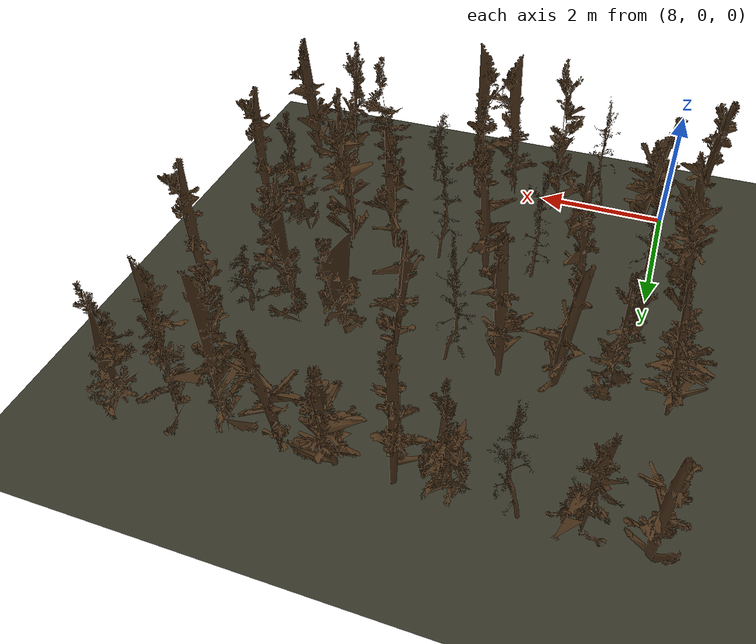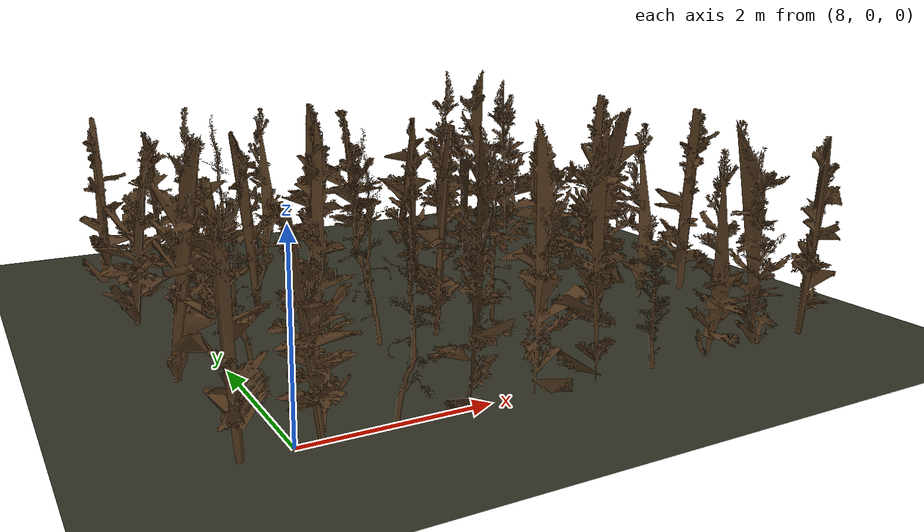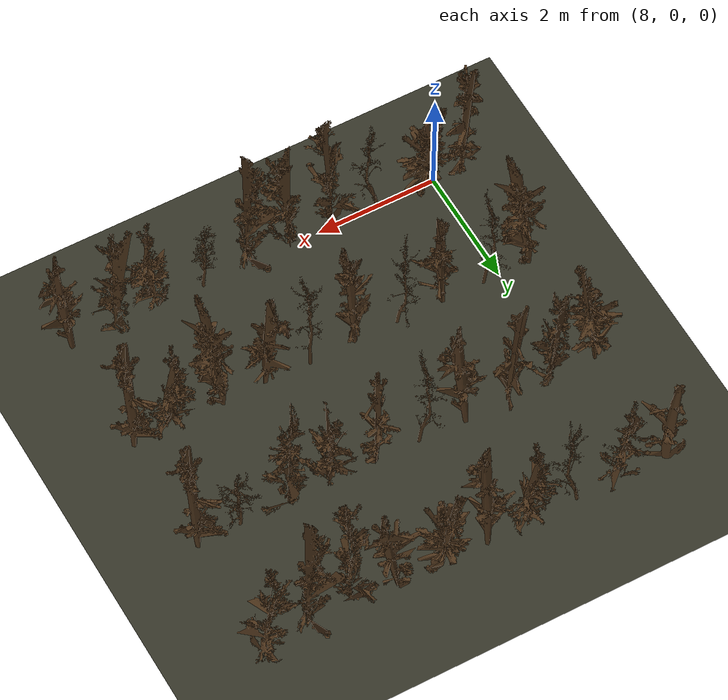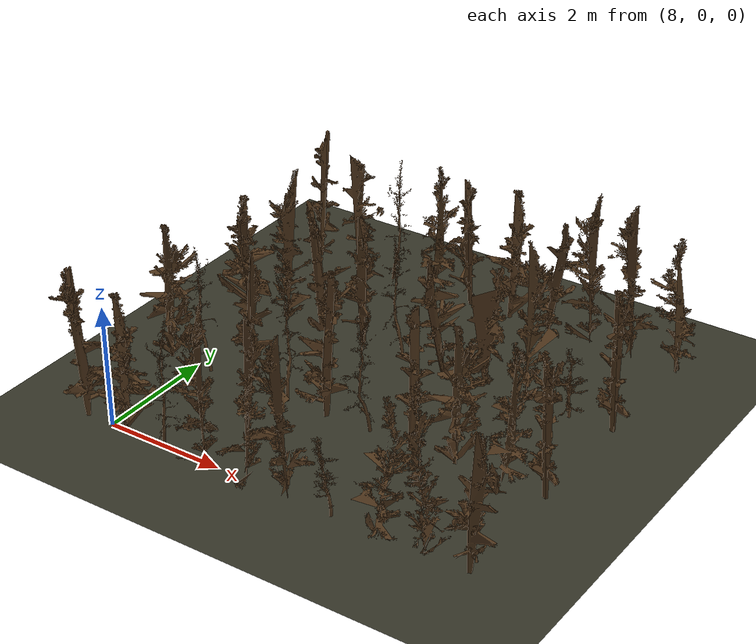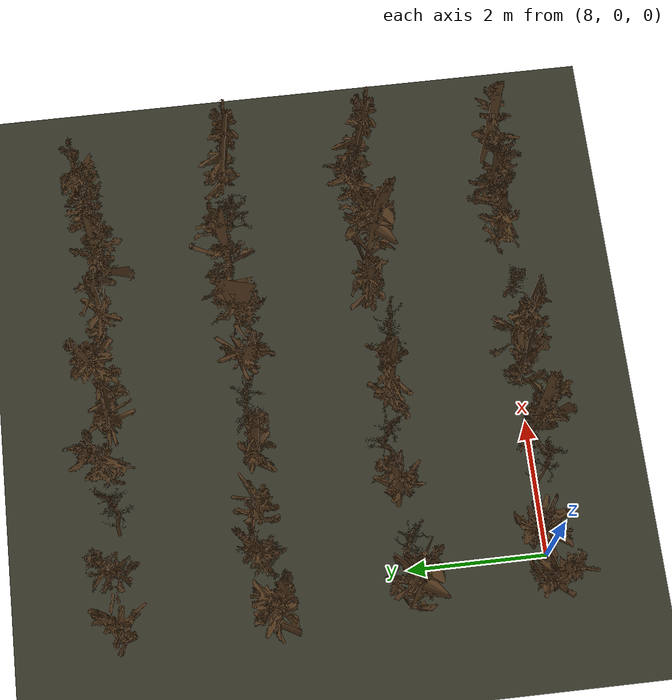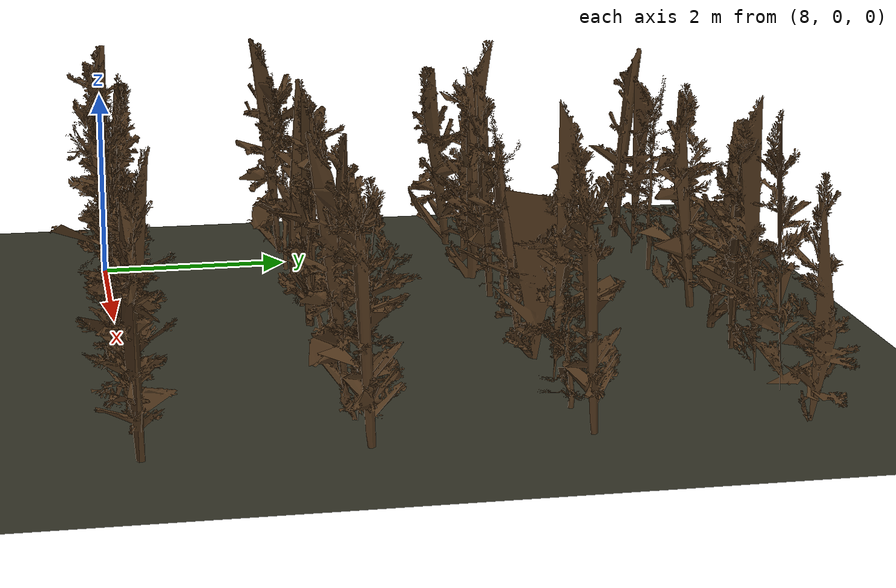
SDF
<sdf version="1.9">
 <world name="orchard_dormant_world">
  <model name="ground_plane">
   <static>true</static>
   <link name="link">
    <collision name="collision">
     <geometry><plane><normal>0 0 1</normal><size>500 500</size></plane></geometry>
    </collision>
    <visual name="visual">
     <geometry><plane><normal>0 0 1</normal><size>500 500</size></plane></geometry>
     <material><ambient>0.2 0.2 0.15 1</ambient><diffuse>0.2 0.2 0.15 1</diffuse></material>
    </visual>
   </link>
  </model>
  <model name="tree_r1_t11">
   <static>true</static>
   <pose>7.500 0.000 -0.100 0 0 5.416</pose>
   <link name="link">
    <collision name="collision">
     <geometry>
      <mesh>
       <uri>file:///home/administrator/ros2/orchard_navigation_rl_ws/src/orchard_worlds/models/orchard_model/tree6_collision.stl</uri>
      </mesh>
     </geometry>
    </collision>
    <visual name="visual">
     <geometry>
      <mesh>
       <uri>file:///home/administrator/ros2/orchard_navigation_rl_ws/src/orchard_worlds/models/orchard_model/tree6.stl</uri>
      </mesh>
     </geometry>
     <material><ambient>0.3 0.2 0.1 1</ambient><diffuse>0.3 0.2 0.1 1</diffuse></material>
    </visual>
   </link>
  </model>
  <model name="tree_r1_t12">
   <static>true</static>
   <pose>8.250 0.000 -0.100 0 0 4.954</pose>
   <link name="link">
    <collision name="collision">
     <geometry>
      <mesh>
       <uri>file:///home/administrator/ros2/orchard_navigation_rl_ws/src/orchard_worlds/models/orchard_model/tree12_collision.stl</uri>
      </mesh>
     </geometry>
    </collision>
    <visual name="visual">
     <geometry>
      <mesh>
       <uri>file:///home/administrator/ros2/orchard_navigation_rl_ws/src/orchard_worlds/models/orchard_model/tree12.stl</uri>
      </mesh>
     </geometry>
     <material><ambient>0.3 0.2 0.1 1</ambient><diffuse>0.3 0.2 0.1 1</diffuse></material>
    </visual>
   </link>
  </model>
  <model name="tree_r1_t13">
   <static>true</static>
   <pose>9.000 0.000 -0.100 0 0 3.302</pose>
   <link name="link">
    <collision name="collision">
     <geometry>
      <mesh>
       <uri>file:///home/administrator/ros2/orchard_navigation_rl_ws/src/orchard_worlds/models/orchard_model/tree16_collision.stl</uri>
      </mesh>
     </geometry>
    </collision>
    <visual name="visual">
     <geometry>
      <mesh>
       <uri>file:///home/administrator/ros2/orchard_navigation_rl_ws/src/orchard_worlds/models/orchard_model/tree16.stl</uri>
      </mesh>
     </geometry>
     <material><ambient>0.3 0.2 0.1 1</ambient><diffuse>0.3 0.2 0.1 1</diffuse></material>
    </visual>
   </link>
  </model>
  <model name="tree_r1_t14">
   <static>true</static>
   <pose>9.750 0.000 -0.100 0 0 0.837</pose>
   <link name="link">
    <collision name="collision">
     <geometry>
      <mesh>
       <uri>file:///home/administrator/ros2/orchard_navigation_rl_ws/src/orchard_worlds/models/orchard_model/tree3_collision.stl</uri>
      </mesh>
     </geometry>
    </collision>
    <visual name="visual">
     <geometry>
      <mesh>
       <uri>file:///home/administrator/ros2/orchard_navigation_rl_ws/src/orchard_worlds/models/orchard_model/tree3.stl</uri>
      </mesh>
     </geometry>
     <material><ambient>0.3 0.2 0.1 1</ambient><diffuse>0.3 0.2 0.1 1</diffuse></material>
    </visual>
   </link>
  </model>
  <model name="tree_r1_t15">
   <static>true</static>
   <pose>10.500 0.000 -0.100 0 0 2.239</pose>
   <link name="link">
    <collision name="collision">
     <geometry>
      <mesh>
       <uri>file:///home/administrator/ros2/orchard_navigation_rl_ws/src/orchard_worlds/models/orchard_model/tree3_collision.stl</uri>
      </mesh>
     </geometry>
    </collision>
    <visual name="visual">
     <geometry>
      <mesh>
       <uri>file:///home/administrator/ros2/orchard_navigation_rl_ws/src/orchard_worlds/models/orchard_model/tree3.stl</uri>
      </mesh>
     </geometry>
     <material><ambient>0.3 0.2 0.1 1</ambient><diffuse>0.3 0.2 0.1 1</diffuse></material>
    </visual>
   </link>
  </model>
  <model name="tree_r1_t16">
   <static>true</static>
   <pose>11.250 0.000 -0.100 0 0 5.531</pose>
   <link name="link">
    <collision name="collision">
     <geometry>
      <mesh>
       <uri>file:///home/administrator/ros2/orchard_navigation_rl_ws/src/orchard_worlds/models/orchard_model/tree3_collision.stl</uri>
      </mesh>
     </geometry>
    </collision>
    <visual name="visual">
     <geometry>
      <mesh>
       <uri>file:///home/administrator/ros2/orchard_navigation_rl_ws/src/orchard_worlds/models/orchard_model/tree3.stl</uri>
      </mesh>
     </geometry>
     <material><ambient>0.3 0.2 0.1 1</ambient><diffuse>0.3 0.2 0.1 1</diffuse></material>
    </visual>
   </link>
  </model>
  <model name="tree_r1_t17">
   <static>true</static>
   <pose>12.000 0.000 -0.100 0 0 0.229</pose>
   <link name="link">
    <collision name="collision">
     <geometry>
      <mesh>
       <uri>file:///home/administrator/ros2/orchard_navigation_rl_ws/src/orchard_worlds/models/orchard_model/tree4_collision.stl</uri>
      </mesh>
     </geometry>
    </collision>
    <visual name="visual">
     <geometry>
      <mesh>
       <uri>file:///home/administrator/ros2/orchard_navigation_rl_ws/src/orchard_worlds/models/orchard_model/tree4.stl</uri>
      </mesh>
     </geometry>
     <material><ambient>0.3 0.2 0.1 1</ambient><diffuse>0.3 0.2 0.1 1</diffuse></material>
    </visual>
   </link>
  </model>
  <model name="tree_r1_t18">
   <static>true</static>
   <pose>12.750 0.000 -0.100 0 0 2.696</pose>
   <link name="link">
    <collision name="collision">
     <geometry>
      <mesh>
       <uri>file:///home/administrator/ros2/orchard_navigation_rl_ws/src/orchard_worlds/models/orchard_model/tree10_collision.stl</uri>
      </mesh>
     </geometry>
    </collision>
    <visual name="visual">
     <geometry>
      <mesh>
       <uri>file:///home/administrator/ros2/orchard_navigation_rl_ws/src/orchard_worlds/models/orchard_model/tree10.stl</uri>
      </mesh>
     </geometry>
     <material><ambient>0.3 0.2 0.1 1</ambient><diffuse>0.3 0.2 0.1 1</diffuse></material>
    </visual>
   </link>
  </model>
  <model name="tree_r1_t19">
   <static>true</static>
   <pose>13.500 0.000 -0.100 0 0 4.543</pose>
   <link name="link">
    <collision name="collision">
     <geometry>
      <mesh>
       <uri>file:///home/administrator/ros2/orchard_navigation_rl_ws/src/orchard_worlds/models/orchard_model/tree5_collision.stl</uri>
      </mesh>
     </geometry>
    </collision>
    <visual name="visual">
     <geometry>
      <mesh>
       <uri>file:///home/administrator/ros2/orchard_navigation_rl_ws/src/orchard_worlds/models/orchard_model/tree5.stl</uri>
      </mesh>
     </geometry>
     <material><ambient>0.3 0.2 0.1 1</ambient><diffuse>0.3 0.2 0.1 1</diffuse></material>
    </visual>
   </link>
  </model>
  <model name="tree_r1_t20">
   <static>true</static>
   <pose>14.250 0.000 -0.100 0 0 2.462</pose>
   <link name="link">
    <collision name="collision">
     <geometry>
      <mesh>
       <uri>file:///home/administrator/ros2/orchard_navigation_rl_ws/src/orchard_worlds/models/orchard_model/tree15_collision.stl</uri>
      </mesh>
     </geometry>
    </collision>
    <visual name="visual">
     <geometry>
      <mesh>
       <uri>file:///home/administrator/ros2/orchard_navigation_rl_ws/src/orchard_worlds/models/orchard_model/tree15.stl</uri>
      </mesh>
     </geometry>
     <material><ambient>0.3 0.2 0.1 1</ambient><diffuse>0.3 0.2 0.1 1</diffuse></material>
    </visual>
   </link>
  </model>
  <model name="tree_r2_t11">
   <static>true</static>
   <pose>7.500 2.000 -0.100 0 0 1.843</pose>
   <link name="link">
    <collision name="collision">
     <geometry>
      <mesh>
       <uri>file:///home/administrator/ros2/orchard_navigation_rl_ws/src/orchard_worlds/models/orchard_model/tree7_collision.stl</uri>
      </mesh>
     </geometry>
    </collision>
    <visual name="visual">
     <geometry>
      <mesh>
       <uri>file:///home/administrator/ros2/orchard_navigation_rl_ws/src/orchard_worlds/models/orchard_model/tree7.stl</uri>
      </mesh>
     </geometry>
     <material><ambient>0.3 0.2 0.1 1</ambient><diffuse>0.3 0.2 0.1 1</diffuse></material>
    </visual>
   </link>
  </model>
  <model name="tree_r2_t12">
   <static>true</static>
   <pose>8.250 2.000 -0.100 0 0 0.628</pose>
   <link name="link">
    <collision name="collision">
     <geometry>
      <mesh>
       <uri>file:///home/administrator/ros2/orchard_navigation_rl_ws/src/orchard_worlds/models/orchard_model/tree16_collision.stl</uri>
      </mesh>
     </geometry>
    </collision>
    <visual name="visual">
     <geometry>
      <mesh>
       <uri>file:///home/administrator/ros2/orchard_navigation_rl_ws/src/orchard_worlds/models/orchard_model/tree16.stl</uri>
      </mesh>
     </geometry>
     <material><ambient>0.3 0.2 0.1 1</ambient><diffuse>0.3 0.2 0.1 1</diffuse></material>
    </visual>
   </link>
  </model>
  <model name="tree_r2_t13">
   <static>true</static>
   <pose>9.000 2.000 -0.100 0 0 3.606</pose>
   <link name="link">
    <collision name="collision">
     <geometry>
      <mesh>
       <uri>file:///home/administrator/ros2/orchard_navigation_rl_ws/src/orchard_worlds/models/orchard_model/tree15_collision.stl</uri>
      </mesh>
     </geometry>
    </collision>
    <visual name="visual">
     <geometry>
      <mesh>
       <uri>file:///home/administrator/ros2/orchard_navigation_rl_ws/src/orchard_worlds/models/orchard_model/tree15.stl</uri>
      </mesh>
     </geometry>
     <material><ambient>0.3 0.2 0.1 1</ambient><diffuse>0.3 0.2 0.1 1</diffuse></material>
    </visual>
   </link>
  </model>
  <model name="tree_r2_t14">
   <static>true</static>
   <pose>9.750 2.000 -0.100 0 0 5.785</pose>
   <link name="link">
    <collision name="collision">
     <geometry>
      <mesh>
       <uri>file:///home/administrator/ros2/orchard_navigation_rl_ws/src/orchard_worlds/models/orchard_model/tree16_collision.stl</uri>
      </mesh>
     </geometry>
    </collision>
    <visual name="visual">
     <geometry>
      <mesh>
       <uri>file:///home/administrator/ros2/orchard_navigation_rl_ws/src/orchard_worlds/models/orchard_model/tree16.stl</uri>
      </mesh>
     </geometry>
     <material><ambient>0.3 0.2 0.1 1</ambient><diffuse>0.3 0.2 0.1 1</diffuse></material>
    </visual>
   </link>
  </model>
  <model name="tree_r2_t15">
   <static>true</static>
   <pose>10.500 2.000 -0.100 0 0 2.250</pose>
   <link name="link">
    <collision name="collision">
     <geometry>
      <mesh>
       <uri>file:///home/administrator/ros2/orchard_navigation_rl_ws/src/orchard_worlds/models/orchard_model/tree6_collision.stl</uri>
      </mesh>
     </geometry>
    </collision>
    <visual name="visual">
     <geometry>
      <mesh>
       <uri>file:///home/administrator/ros2/orchard_navigation_rl_ws/src/orchard_worlds/models/orchard_model/tree6.stl</uri>
      </mesh>
     </geometry>
     <material><ambient>0.3 0.2 0.1 1</ambient><diffuse>0.3 0.2 0.1 1</diffuse></material>
    </visual>
   </link>
  </model>
  <model name="tree_r2_t16">
   <static>true</static>
   <pose>11.250 2.000 -0.100 0 0 1.736</pose>
   <link name="link">
    <collision name="collision">
     <geometry>
      <mesh>
       <uri>file:///home/administrator/ros2/orchard_navigation_rl_ws/src/orchard_worlds/models/orchard_model/tree16_collision.stl</uri>
      </mesh>
     </geometry>
    </collision>
    <visual name="visual">
     <geometry>
      <mesh>
       <uri>file:///home/administrator/ros2/orchard_navigation_rl_ws/src/orchard_worlds/models/orchard_model/tree16.stl</uri>
      </mesh>
     </geometry>
     <material><ambient>0.3 0.2 0.1 1</ambient><diffuse>0.3 0.2 0.1 1</diffuse></material>
    </visual>
   </link>
  </model>
  <model name="tree_r2_t17">
   <static>true</static>
   <pose>12.000 2.000 -0.100 0 0 4.766</pose>
   <link name="link">
    <collision name="collision">
     <geometry>
      <mesh>
       <uri>file:///home/administrator/ros2/orchard_navigation_rl_ws/src/orchard_worlds/models/orchard_model/tree15_collision.stl</uri>
      </mesh>
     </geometry>
    </collision>
    <visual name="visual">
     <geometry>
      <mesh>
       <uri>file:///home/administrator/ros2/orchard_navigation_rl_ws/src/orchard_worlds/models/orchard_model/tree15.stl</uri>
      </mesh>
     </geometry>
     <material><ambient>0.3 0.2 0.1 1</ambient><diffuse>0.3 0.2 0.1 1</diffuse></material>
    </visual>
   </link>
  </model>
  <model name="tree_r2_t18">
   <static>true</static>
   <pose>12.750 2.000 -0.100 0 0 1.633</pose>
   <link name="link">
    <collision name="collision">
     <geometry>
      <mesh>
       <uri>file:///home/administrator/ros2/orchard_navigation_rl_ws/src/orchard_worlds/models/orchard_model/tree7_collision.stl</uri>
      </mesh>
     </geometry>
    </collision>
    <visual name="visual">
     <geometry>
      <mesh>
       <uri>file:///home/administrator/ros2/orchard_navigation_rl_ws/src/orchard_worlds/models/orchard_model/tree7.stl</uri>
      </mesh>
     </geometry>
     <material><ambient>0.3 0.2 0.1 1</ambient><diffuse>0.3 0.2 0.1 1</diffuse></material>
    </visual>
   </link>
  </model>
  <model name="tree_r2_t19">
   <static>true</static>
   <pose>13.500 2.000 -0.100 0 0 3.396</pose>
   <link name="link">
    <collision name="collision">
     <geometry>
      <mesh>
       <uri>file:///home/administrator/ros2/orchard_navigation_rl_ws/src/orchard_worlds/models/orchard_model/tree10_collision.stl</uri>
      </mesh>
     </geometry>
    </collision>
    <visual name="visual">
     <geometry>
      <mesh>
       <uri>file:///home/administrator/ros2/orchard_navigation_rl_ws/src/orchard_worlds/models/orchard_model/tree10.stl</uri>
      </mesh>
     </geometry>
     <material><ambient>0.3 0.2 0.1 1</ambient><diffuse>0.3 0.2 0.1 1</diffuse></material>
    </visual>
   </link>
  </model>
  <model name="tree_r2_t20">
   <static>true</static>
   <pose>14.250 2.000 -0.100 0 0 0.780</pose>
   <link name="link">
    <collision name="collision">
     <geometry>
      <mesh>
       <uri>file:///home/administrator/ros2/orchard_navigation_rl_ws/src/orchard_worlds/models/orchard_model/tree6_collision.stl</uri>
      </mesh>
     </geometry>
    </collision>
    <visual name="visual">
     <geometry>
      <mesh>
       <uri>file:///home/administrator/ros2/orchard_navigation_rl_ws/src/orchard_worlds/models/orchard_model/tree6.stl</uri>
      </mesh>
     </geometry>
     <material><ambient>0.3 0.2 0.1 1</ambient><diffuse>0.3 0.2 0.1 1</diffuse></material>
    </visual>
   </link>
  </model>
  <model name="tree_r3_t11">
   <static>true</static>
   <pose>7.500 4.000 -0.100 0 0 1.658</pose>
   <link name="link">
    <collision name="collision">
     <geometry>
      <mesh>
       <uri>file:///home/administrator/ros2/orchard_navigation_rl_ws/src/orchard_worlds/models/orchard_model/tree12_collision.stl</uri>
      </mesh>
     </geometry>
    </collision>
    <visual name="visual">
     <geometry>
      <mesh>
       <uri>file:///home/administrator/ros2/orchard_navigation_rl_ws/src/orchard_worlds/models/orchard_model/tree12.stl</uri>
      </mesh>
     </geometry>
     <material><ambient>0.3 0.2 0.1 1</ambient><diffuse>0.3 0.2 0.1 1</diffuse></material>
    </visual>
   </link>
  </model>
  <model name="tree_r3_t12">
   <static>true</static>
   <pose>8.250 4.000 -0.100 0 0 3.568</pose>
   <link name="link">
    <collision name="collision">
     <geometry>
      <mesh>
       <uri>file:///home/administrator/ros2/orchard_navigation_rl_ws/src/orchard_worlds/models/orchard_model/tree5_collision.stl</uri>
      </mesh>
     </geometry>
    </collision>
    <visual name="visual">
     <geometry>
      <mesh>
       <uri>file:///home/administrator/ros2/orchard_navigation_rl_ws/src/orchard_worlds/models/orchard_model/tree5.stl</uri>
      </mesh>
     </geometry>
     <material><ambient>0.3 0.2 0.1 1</ambient><diffuse>0.3 0.2 0.1 1</diffuse></material>
    </visual>
   </link>
  </model>
  <model name="tree_r3_t13">
   <static>true</static>
   <pose>9.000 4.000 -0.100 0 0 5.529</pose>
   <link name="link">
    <collision name="collision">
     <geometry>
      <mesh>
       <uri>file:///home/administrator/ros2/orchard_navigation_rl_ws/src/orchard_worlds/models/orchard_model/tree13_collision.stl</uri>
      </mesh>
     </geometry>
    </collision>
    <visual name="visual">
     <geometry>
      <mesh>
       <uri>file:///home/administrator/ros2/orchard_navigation_rl_ws/src/orchard_worlds/models/orchard_model/tree13.stl</uri>
      </mesh>
     </geometry>
     <material><ambient>0.3 0.2 0.1 1</ambient><diffuse>0.3 0.2 0.1 1</diffuse></material>
    </visual>
   </link>
  </model>
  <model name="tree_r3_t14">
   <static>true</static>
   <pose>9.750 4.000 -0.100 0 0 1.947</pose>
   <link name="link">
    <collision name="collision">
     <geometry>
      <mesh>
       <uri>file:///home/administrator/ros2/orchard_navigation_rl_ws/src/orchard_worlds/models/orchard_model/tree15_collision.stl</uri>
      </mesh>
     </geometry>
    </collision>
    <visual name="visual">
     <geometry>
      <mesh>
       <uri>file:///home/administrator/ros2/orchard_navigation_rl_ws/src/orchard_worlds/models/orchard_model/tree15.stl</uri>
      </mesh>
     </geometry>
     <material><ambient>0.3 0.2 0.1 1</ambient><diffuse>0.3 0.2 0.1 1</diffuse></material>
    </visual>
   </link>
  </model>
  <model name="tree_r3_t15">
   <static>true</static>
   <pose>10.500 4.000 -0.100 0 0 0.617</pose>
   <link name="link">
    <collision name="collision">
     <geometry>
      <mesh>
       <uri>file:///home/administrator/ros2/orchard_navigation_rl_ws/src/orchard_worlds/models/orchard_model/tree16_collision.stl</uri>
      </mesh>
     </geometry>
    </collision>
    <visual name="visual">
     <geometry>
      <mesh>
       <uri>file:///home/administrator/ros2/orchard_navigation_rl_ws/src/orchard_worlds/models/orchard_model/tree16.stl</uri>
      </mesh>
     </geometry>
     <material><ambient>0.3 0.2 0.1 1</ambient><diffuse>0.3 0.2 0.1 1</diffuse></material>
    </visual>
   </link>
  </model>
  <model name="tree_r3_t16">
   <static>true</static>
   <pose>11.250 4.000 -0.100 0 0 0.026</pose>
   <link name="link">
    <collision name="collision">
     <geometry>
      <mesh>
       <uri>file:///home/administrator/ros2/orchard_navigation_rl_ws/src/orchard_worlds/models/orchard_model/tree8_collision.stl</uri>
      </mesh>
     </geometry>
    </collision>
    <visual name="visual">
     <geometry>
      <mesh>
       <uri>file:///home/administrator/ros2/orchard_navigation_rl_ws/src/orchard_worlds/models/orchard_model/tree8.stl</uri>
      </mesh>
     </geometry>
     <material><ambient>0.3 0.2 0.1 1</ambient><diffuse>0.3 0.2 0.1 1</diffuse></material>
    </visual>
   </link>
  </model>
  <model name="tree_r3_t17">
   <static>true</static>
   <pose>12.000 4.000 -0.100 0 0 3.962</pose>
   <link name="link">
    <collision name="collision">
     <geometry>
      <mesh>
       <uri>file:///home/administrator/ros2/orchard_navigation_rl_ws/src/orchard_worlds/models/orchard_model/tree11_collision.stl</uri>
      </mesh>
     </geometry>
    </collision>
    <visual name="visual">
     <geometry>
      <mesh>
       <uri>file:///home/administrator/ros2/orchard_navigation_rl_ws/src/orchard_worlds/models/orchard_model/tree11.stl</uri>
      </mesh>
     </geometry>
     <material><ambient>0.3 0.2 0.1 1</ambient><diffuse>0.3 0.2 0.1 1</diffuse></material>
    </visual>
   </link>
  </model>
  <model name="tree_r3_t18">
   <static>true</static>
   <pose>12.750 4.000 -0.100 0 0 3.552</pose>
   <link name="link">
    <collision name="collision">
     <geometry>
      <mesh>
       <uri>file:///home/administrator/ros2/orchard_navigation_rl_ws/src/orchard_worlds/models/orchard_model/tree3_collision.stl</uri>
      </mesh>
     </geometry>
    </collision>
    <visual name="visual">
     <geometry>
      <mesh>
       <uri>file:///home/administrator/ros2/orchard_navigation_rl_ws/src/orchard_worlds/models/orchard_model/tree3.stl</uri>
      </mesh>
     </geometry>
     <material><ambient>0.3 0.2 0.1 1</ambient><diffuse>0.3 0.2 0.1 1</diffuse></material>
    </visual>
   </link>
  </model>
  <model name="tree_r3_t19">
   <static>true</static>
   <pose>13.500 4.000 -0.100 0 0 2.952</pose>
   <link name="link">
    <collision name="collision">
     <geometry>
      <mesh>
       <uri>file:///home/administrator/ros2/orchard_navigation_rl_ws/src/orchard_worlds/models/orchard_model/tree14_collision.stl</uri>
      </mesh>
     </geometry>
    </collision>
    <visual name="visual">
     <geometry>
      <mesh>
       <uri>file:///home/administrator/ros2/orchard_navigation_rl_ws/src/orchard_worlds/models/orchard_model/tree14.stl</uri>
      </mesh>
     </geometry>
     <material><ambient>0.3 0.2 0.1 1</ambient><diffuse>0.3 0.2 0.1 1</diffuse></material>
    </visual>
   </link>
  </model>
  <model name="tree_r3_t20">
   <static>true</static>
   <pose>14.250 4.000 -0.100 0 0 0.968</pose>
   <link name="link">
    <collision name="collision">
     <geometry>
      <mesh>
       <uri>file:///home/administrator/ros2/orchard_navigation_rl_ws/src/orchard_worlds/models/orchard_model/tree6_collision.stl</uri>
      </mesh>
     </geometry>
    </collision>
    <visual name="visual">
     <geometry>
      <mesh>
       <uri>file:///home/administrator/ros2/orchard_navigation_rl_ws/src/orchard_worlds/models/orchard_model/tree6.stl</uri>
      </mesh>
     </geometry>
     <material><ambient>0.3 0.2 0.1 1</ambient><diffuse>0.3 0.2 0.1 1</diffuse></material>
    </visual>
   </link>
  </model>
  <model name="tree_r4_t11">
   <static>true</static>
   <pose>7.500 6.000 -0.100 0 0 3.976</pose>
   <link name="link">
    <collision name="collision">
     <geometry>
      <mesh>
       <uri>file:///home/administrator/ros2/orchard_navigation_rl_ws/src/orchard_worlds/models/orchard_model/tree13_collision.stl</uri>
      </mesh>
     </geometry>
    </collision>
    <visual name="visual">
     <geometry>
      <mesh>
       <uri>file:///home/administrator/ros2/orchard_navigation_rl_ws/src/orchard_worlds/models/orchard_model/tree13.stl</uri>
      </mesh>
     </geometry>
     <material><ambient>0.3 0.2 0.1 1</ambient><diffuse>0.3 0.2 0.1 1</diffuse></material>
    </visual>
   </link>
  </model>
  <model name="tree_r4_t12">
   <static>true</static>
   <pose>8.250 6.000 -0.100 0 0 3.829</pose>
   <link name="link">
    <collision name="collision">
     <geometry>
      <mesh>
       <uri>file:///home/administrator/ros2/orchard_navigation_rl_ws/src/orchard_worlds/models/orchard_model/tree1_collision.stl</uri>
      </mesh>
     </geometry>
    </collision>
    <visual name="visual">
     <geometry>
      <mesh>
       <uri>file:///home/administrator/ros2/orchard_navigation_rl_ws/src/orchard_worlds/models/orchard_model/tree1.stl</uri>
      </mesh>
     </geometry>
     <material><ambient>0.3 0.2 0.1 1</ambient><diffuse>0.3 0.2 0.1 1</diffuse></material>
    </visual>
   </link>
  </model>
  <model name="tree_r4_t13">
   <static>true</static>
   <pose>9.000 6.000 -0.100 0 0 3.579</pose>
   <link name="link">
    <collision name="collision">
     <geometry>
      <mesh>
       <uri>file:///home/administrator/ros2/orchard_navigation_rl_ws/src/orchard_worlds/models/orchard_model/tree16_collision.stl</uri>
      </mesh>
     </geometry>
    </collision>
    <visual name="visual">
     <geometry>
      <mesh>
       <uri>file:///home/administrator/ros2/orchard_navigation_rl_ws/src/orchard_worlds/models/orchard_model/tree16.stl</uri>
      </mesh>
     </geometry>
     <material><ambient>0.3 0.2 0.1 1</ambient><diffuse>0.3 0.2 0.1 1</diffuse></material>
    </visual>
   </link>
  </model>
  <model name="tree_r4_t14">
   <static>true</static>
   <pose>9.750 6.000 -0.100 0 0 3.580</pose>
   <link name="link">
    <collision name="collision">
     <geometry>
      <mesh>
       <uri>file:///home/administrator/ros2/orchard_navigation_rl_ws/src/orchard_worlds/models/orchard_model/tree10_collision.stl</uri>
      </mesh>
     </geometry>
    </collision>
    <visual name="visual">
     <geometry>
      <mesh>
       <uri>file:///home/administrator/ros2/orchard_navigation_rl_ws/src/orchard_worlds/models/orchard_model/tree10.stl</uri>
      </mesh>
     </geometry>
     <material><ambient>0.3 0.2 0.1 1</ambient><diffuse>0.3 0.2 0.1 1</diffuse></material>
    </visual>
   </link>
  </model>
  <model name="tree_r4_t15">
   <static>true</static>
   <pose>10.500 6.000 -0.100 0 0 1.297</pose>
   <link name="link">
    <collision name="collision">
     <geometry>
      <mesh>
       <uri>file:///home/administrator/ros2/orchard_navigation_rl_ws/src/orchard_worlds/models/orchard_model/tree15_collision.stl</uri>
      </mesh>
     </geometry>
    </collision>
    <visual name="visual">
     <geometry>
      <mesh>
       <uri>file:///home/administrator/ros2/orchard_navigation_rl_ws/src/orchard_worlds/models/orchard_model/tree15.stl</uri>
      </mesh>
     </geometry>
     <material><ambient>0.3 0.2 0.1 1</ambient><diffuse>0.3 0.2 0.1 1</diffuse></material>
    </visual>
   </link>
  </model>
  <model name="tree_r4_t16">
   <static>true</static>
   <pose>11.250 6.000 -0.100 0 0 4.485</pose>
   <link name="link">
    <collision name="collision">
     <geometry>
      <mesh>
       <uri>file:///home/administrator/ros2/orchard_navigation_rl_ws/src/orchard_worlds/models/orchard_model/tree12_collision.stl</uri>
      </mesh>
     </geometry>
    </collision>
    <visual name="visual">
     <geometry>
      <mesh>
       <uri>file:///home/administrator/ros2/orchard_navigation_rl_ws/src/orchard_worlds/models/orchard_model/tree12.stl</uri>
      </mesh>
     </geometry>
     <material><ambient>0.3 0.2 0.1 1</ambient><diffuse>0.3 0.2 0.1 1</diffuse></material>
    </visual>
   </link>
  </model>
  <model name="tree_r4_t17">
   <static>true</static>
   <pose>12.000 6.000 -0.100 0 0 2.123</pose>
   <link name="link">
    <collision name="collision">
     <geometry>
      <mesh>
       <uri>file:///home/administrator/ros2/orchard_navigation_rl_ws/src/orchard_worlds/models/orchard_model/tree8_collision.stl</uri>
      </mesh>
     </geometry>
    </collision>
    <visual name="visual">
     <geometry>
      <mesh>
       <uri>file:///home/administrator/ros2/orchard_navigation_rl_ws/src/orchard_worlds/models/orchard_model/tree8.stl</uri>
      </mesh>
     </geometry>
     <material><ambient>0.3 0.2 0.1 1</ambient><diffuse>0.3 0.2 0.1 1</diffuse></material>
    </visual>
   </link>
  </model>
  <model name="tree_r4_t18">
   <static>true</static>
   <pose>12.750 6.000 -0.100 0 0 0.348</pose>
   <link name="link">
    <collision name="collision">
     <geometry>
      <mesh>
       <uri>file:///home/administrator/ros2/orchard_navigation_rl_ws/src/orchard_worlds/models/orchard_model/tree3_collision.stl</uri>
      </mesh>
     </geometry>
    </collision>
    <visual name="visual">
     <geometry>
      <mesh>
       <uri>file:///home/administrator/ros2/orchard_navigation_rl_ws/src/orchard_worlds/models/orchard_model/tree3.stl</uri>
      </mesh>
     </geometry>
     <material><ambient>0.3 0.2 0.1 1</ambient><diffuse>0.3 0.2 0.1 1</diffuse></material>
    </visual>
   </link>
  </model>
  <model name="tree_r4_t19">
   <static>true</static>
   <pose>13.500 6.000 -0.100 0 0 5.377</pose>
   <link name="link">
    <collision name="collision">
     <geometry>
      <mesh>
       <uri>file:///home/administrator/ros2/orchard_navigation_rl_ws/src/orchard_worlds/models/orchard_model/tree3_collision.stl</uri>
      </mesh>
     </geometry>
    </collision>
    <visual name="visual">
     <geometry>
      <mesh>
       <uri>file:///home/administrator/ros2/orchard_navigation_rl_ws/src/orchard_worlds/models/orchard_model/tree3.stl</uri>
      </mesh>
     </geometry>
     <material><ambient>0.3 0.2 0.1 1</ambient><diffuse>0.3 0.2 0.1 1</diffuse></material>
    </visual>
   </link>
  </model>
  <model name="tree_r4_t20">
   <static>true</static>
   <pose>14.250 6.000 -0.100 0 0 4.849</pose>
   <link name="link">
    <collision name="collision">
     <geometry>
      <mesh>
       <uri>file:///home/administrator/ros2/orchard_navigation_rl_ws/src/orchard_worlds/models/orchard_model/tree10_collision.stl</uri>
      </mesh>
     </geometry>
    </collision>
    <visual name="visual">
     <geometry>
      <mesh>
       <uri>file:///home/administrator/ros2/orchard_navigation_rl_ws/src/orchard_worlds/models/orchard_model/tree10.stl</uri>
      </mesh>
     </geometry>
     <material><ambient>0.3 0.2 0.1 1</ambient><diffuse>0.3 0.2 0.1 1</diffuse></material>
    </visual>
   </link>
  </model>
 </world>
</sdf>
